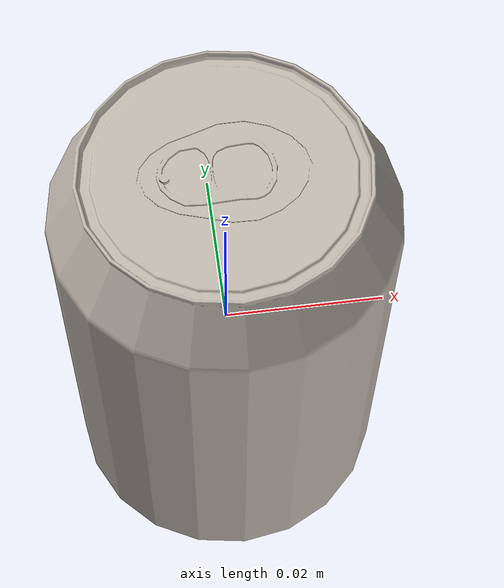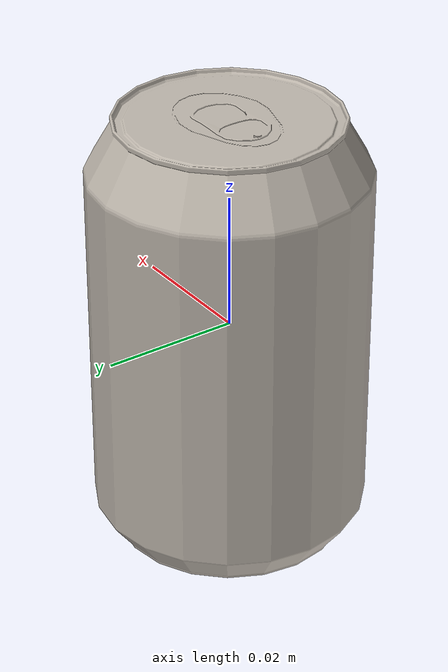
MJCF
<mujoco model="tomato_0">
  <asset>
    <mesh file="visual/model_normalized_0.obj" name="tomato_0_model_normalized_0_vis" scale="0.06500000000000003 0.06500000000000003 0.06500000000000003" refquat="1.0 0.0 0.0 0.0" />
    <mesh file="collision/model_normalized_collision_22.obj" name="tomato_0_model_normalized_collision_22._coll" scale="0.06500000000000003 0.06500000000000003 0.06500000000000003" refquat="1.0 0.0 0.0 0.0" />
    <mesh file="collision/model_normalized_collision_23.obj" name="tomato_0_model_normalized_collision_23._coll" scale="0.06500000000000003 0.06500000000000003 0.06500000000000003" refquat="1.0 0.0 0.0 0.0" />
    <mesh file="collision/model_normalized_collision_21.obj" name="tomato_0_model_normalized_collision_21._coll" scale="0.06500000000000003 0.06500000000000003 0.06500000000000003" refquat="1.0 0.0 0.0 0.0" />
    <mesh file="collision/model_normalized_collision_20.obj" name="tomato_0_model_normalized_collision_20._coll" scale="0.06500000000000003 0.06500000000000003 0.06500000000000003" refquat="1.0 0.0 0.0 0.0" />
    <mesh file="collision/model_normalized_collision_24.obj" name="tomato_0_model_normalized_collision_24._coll" scale="0.06500000000000003 0.06500000000000003 0.06500000000000003" refquat="1.0 0.0 0.0 0.0" />
    <mesh file="collision/model_normalized_collision_30.obj" name="tomato_0_model_normalized_collision_30._coll" scale="0.06500000000000003 0.06500000000000003 0.06500000000000003" refquat="1.0 0.0 0.0 0.0" />
    <mesh file="collision/model_normalized_collision_18.obj" name="tomato_0_model_normalized_collision_18._coll" scale="0.06500000000000003 0.06500000000000003 0.06500000000000003" refquat="1.0 0.0 0.0 0.0" />
    <mesh file="collision/model_normalized_collision_19.obj" name="tomato_0_model_normalized_collision_19._coll" scale="0.06500000000000003 0.06500000000000003 0.06500000000000003" refquat="1.0 0.0 0.0 0.0" />
    <mesh file="collision/model_normalized_collision_31.obj" name="tomato_0_model_normalized_collision_31._coll" scale="0.06500000000000003 0.06500000000000003 0.06500000000000003" refquat="1.0 0.0 0.0 0.0" />
    <mesh file="collision/model_normalized_collision_25.obj" name="tomato_0_model_normalized_collision_25._coll" scale="0.06500000000000003 0.06500000000000003 0.06500000000000003" refquat="1.0 0.0 0.0 0.0" />
    <mesh file="collision/model_normalized_collision_27.obj" name="tomato_0_model_normalized_collision_27._coll" scale="0.06500000000000003 0.06500000000000003 0.06500000000000003" refquat="1.0 0.0 0.0 0.0" />
    <mesh file="collision/model_normalized_collision_26.obj" name="tomato_0_model_normalized_collision_26._coll" scale="0.06500000000000003 0.06500000000000003 0.06500000000000003" refquat="1.0 0.0 0.0 0.0" />
    <mesh file="collision/model_normalized_collision_9.obj" name="tomato_0_model_normalized_collision_9._coll" scale="0.06500000000000003 0.06500000000000003 0.06500000000000003" refquat="1.0 0.0 0.0 0.0" />
    <mesh file="collision/model_normalized_collision_8.obj" name="tomato_0_model_normalized_collision_8._coll" scale="0.06500000000000003 0.06500000000000003 0.06500000000000003" refquat="1.0 0.0 0.0 0.0" />
    <mesh file="collision/model_normalized_collision_6.obj" name="tomato_0_model_normalized_collision_6._coll" scale="0.06500000000000003 0.06500000000000003 0.06500000000000003" refquat="1.0 0.0 0.0 0.0" />
    <mesh file="collision/model_normalized_collision_7.obj" name="tomato_0_model_normalized_collision_7._coll" scale="0.06500000000000003 0.06500000000000003 0.06500000000000003" refquat="1.0 0.0 0.0 0.0" />
    <mesh file="collision/model_normalized_collision_5.obj" name="tomato_0_model_normalized_collision_5._coll" scale="0.06500000000000003 0.06500000000000003 0.06500000000000003" refquat="1.0 0.0 0.0 0.0" />
    <mesh file="collision/model_normalized_collision_4.obj" name="tomato_0_model_normalized_collision_4._coll" scale="0.06500000000000003 0.06500000000000003 0.06500000000000003" refquat="1.0 0.0 0.0 0.0" />
    <mesh file="collision/model_normalized_collision_0.obj" name="tomato_0_model_normalized_collision_0._coll" scale="0.06500000000000003 0.06500000000000003 0.06500000000000003" refquat="1.0 0.0 0.0 0.0" />
    <mesh file="collision/model_normalized_collision_1.obj" name="tomato_0_model_normalized_collision_1._coll" scale="0.06500000000000003 0.06500000000000003 0.06500000000000003" refquat="1.0 0.0 0.0 0.0" />
    <mesh file="collision/model_normalized_collision_3.obj" name="tomato_0_model_normalized_collision_3._coll" scale="0.06500000000000003 0.06500000000000003 0.06500000000000003" refquat="1.0 0.0 0.0 0.0" />
    <mesh file="collision/model_normalized_collision_2.obj" name="tomato_0_model_normalized_collision_2._coll" scale="0.06500000000000003 0.06500000000000003 0.06500000000000003" refquat="1.0 0.0 0.0 0.0" />
    <mesh file="collision/model_normalized_collision_17.obj" name="tomato_0_model_normalized_collision_17._coll" scale="0.06500000000000003 0.06500000000000003 0.06500000000000003" refquat="1.0 0.0 0.0 0.0" />
    <mesh file="collision/model_normalized_collision_16.obj" name="tomato_0_model_normalized_collision_16._coll" scale="0.06500000000000003 0.06500000000000003 0.06500000000000003" refquat="1.0 0.0 0.0 0.0" />
    <mesh file="collision/model_normalized_collision_28.obj" name="tomato_0_model_normalized_collision_28._coll" scale="0.06500000000000003 0.06500000000000003 0.06500000000000003" refquat="1.0 0.0 0.0 0.0" />
    <mesh file="collision/model_normalized_collision_14.obj" name="tomato_0_model_normalized_collision_14._coll" scale="0.06500000000000003 0.06500000000000003 0.06500000000000003" refquat="1.0 0.0 0.0 0.0" />
    <mesh file="collision/model_normalized_collision_15.obj" name="tomato_0_model_normalized_collision_15._coll" scale="0.06500000000000003 0.06500000000000003 0.06500000000000003" refquat="1.0 0.0 0.0 0.0" />
    <mesh file="collision/model_normalized_collision_29.obj" name="tomato_0_model_normalized_collision_29._coll" scale="0.06500000000000003 0.06500000000000003 0.06500000000000003" refquat="1.0 0.0 0.0 0.0" />
    <mesh file="collision/model_normalized_collision_11.obj" name="tomato_0_model_normalized_collision_11._coll" scale="0.06500000000000003 0.06500000000000003 0.06500000000000003" refquat="1.0 0.0 0.0 0.0" />
    <mesh file="collision/model_normalized_collision_10.obj" name="tomato_0_model_normalized_collision_10._coll" scale="0.06500000000000003 0.06500000000000003 0.06500000000000003" refquat="1.0 0.0 0.0 0.0" />
    <mesh file="collision/model_normalized_collision_12.obj" name="tomato_0_model_normalized_collision_12._coll" scale="0.06500000000000003 0.06500000000000003 0.06500000000000003" refquat="1.0 0.0 0.0 0.0" />
    <mesh file="collision/model_normalized_collision_13.obj" name="tomato_0_model_normalized_collision_13._coll" scale="0.06500000000000003 0.06500000000000003 0.06500000000000003" refquat="1.0 0.0 0.0 0.0" />
    <texture type="2d" name="tomato_0_image0" file="visual/image0.png" />
    <material name="tomato_0_material0.023" texture="tomato_0_image0" specular="0.5" shininess="0.25" />
  </asset>
  <worldbody>
    <body>
      <joint name="tomato_0_object_joint" type="free" damping="1." /><body name="tomato_0_object">
        <geom solimp="0.998 0.998 0.001" solref="0.001 1" density="300" friction="0.95 0.3 0.1" type="mesh" mesh="tomato_0_model_normalized_0_vis" conaffinity="0" contype="0" group="1" material="tomato_0_material0.023" />
        <geom solimp="0.998 0.998 0.001" solref="0.001 1" density="300" friction="0.95 0.3 0.1" type="mesh" mesh="tomato_0_model_normalized_collision_22._coll" group="0" rgba="0.8 0.8 0.8 0.0" />
        <geom solimp="0.998 0.998 0.001" solref="0.001 1" density="300" friction="0.95 0.3 0.1" type="mesh" mesh="tomato_0_model_normalized_collision_23._coll" group="0" rgba="0.8 0.8 0.8 0.0" />
        <geom solimp="0.998 0.998 0.001" solref="0.001 1" density="300" friction="0.95 0.3 0.1" type="mesh" mesh="tomato_0_model_normalized_collision_21._coll" group="0" rgba="0.8 0.8 0.8 0.0" />
        <geom solimp="0.998 0.998 0.001" solref="0.001 1" density="300" friction="0.95 0.3 0.1" type="mesh" mesh="tomato_0_model_normalized_collision_20._coll" group="0" rgba="0.8 0.8 0.8 0.0" />
        <geom solimp="0.998 0.998 0.001" solref="0.001 1" density="300" friction="0.95 0.3 0.1" type="mesh" mesh="tomato_0_model_normalized_collision_24._coll" group="0" rgba="0.8 0.8 0.8 0.0" />
        <geom solimp="0.998 0.998 0.001" solref="0.001 1" density="300" friction="0.95 0.3 0.1" type="mesh" mesh="tomato_0_model_normalized_collision_30._coll" group="0" rgba="0.8 0.8 0.8 0.0" />
        <geom solimp="0.998 0.998 0.001" solref="0.001 1" density="300" friction="0.95 0.3 0.1" type="mesh" mesh="tomato_0_model_normalized_collision_18._coll" group="0" rgba="0.8 0.8 0.8 0.0" />
        <geom solimp="0.998 0.998 0.001" solref="0.001 1" density="300" friction="0.95 0.3 0.1" type="mesh" mesh="tomato_0_model_normalized_collision_19._coll" group="0" rgba="0.8 0.8 0.8 0.0" />
        <geom solimp="0.998 0.998 0.001" solref="0.001 1" density="300" friction="0.95 0.3 0.1" type="mesh" mesh="tomato_0_model_normalized_collision_31._coll" group="0" rgba="0.8 0.8 0.8 0.0" />
        <geom solimp="0.998 0.998 0.001" solref="0.001 1" density="300" friction="0.95 0.3 0.1" type="mesh" mesh="tomato_0_model_normalized_collision_25._coll" group="0" rgba="0.8 0.8 0.8 0.0" />
        <geom solimp="0.998 0.998 0.001" solref="0.001 1" density="300" friction="0.95 0.3 0.1" type="mesh" mesh="tomato_0_model_normalized_collision_27._coll" group="0" rgba="0.8 0.8 0.8 0.0" />
        <geom solimp="0.998 0.998 0.001" solref="0.001 1" density="300" friction="0.95 0.3 0.1" type="mesh" mesh="tomato_0_model_normalized_collision_26._coll" group="0" rgba="0.8 0.8 0.8 0.0" />
        <geom solimp="0.998 0.998 0.001" solref="0.001 1" density="300" friction="0.95 0.3 0.1" type="mesh" mesh="tomato_0_model_normalized_collision_9._coll" group="0" rgba="0.8 0.8 0.8 0.0" />
        <geom solimp="0.998 0.998 0.001" solref="0.001 1" density="300" friction="0.95 0.3 0.1" type="mesh" mesh="tomato_0_model_normalized_collision_8._coll" group="0" rgba="0.8 0.8 0.8 0.0" />
        <geom solimp="0.998 0.998 0.001" solref="0.001 1" density="300" friction="0.95 0.3 0.1" type="mesh" mesh="tomato_0_model_normalized_collision_6._coll" group="0" rgba="0.8 0.8 0.8 0.0" />
        <geom solimp="0.998 0.998 0.001" solref="0.001 1" density="300" friction="0.95 0.3 0.1" type="mesh" mesh="tomato_0_model_normalized_collision_7._coll" group="0" rgba="0.8 0.8 0.8 0.0" />
        <geom solimp="0.998 0.998 0.001" solref="0.001 1" density="300" friction="0.95 0.3 0.1" type="mesh" mesh="tomato_0_model_normalized_collision_5._coll" group="0" rgba="0.8 0.8 0.8 0.0" />
        <geom solimp="0.998 0.998 0.001" solref="0.001 1" density="300" friction="0.95 0.3 0.1" type="mesh" mesh="tomato_0_model_normalized_collision_4._coll" group="0" rgba="0.8 0.8 0.8 0.0" />
        <geom solimp="0.998 0.998 0.001" solref="0.001 1" density="300" friction="0.95 0.3 0.1" type="mesh" mesh="tomato_0_model_normalized_collision_0._coll" group="0" rgba="0.8 0.8 0.8 0.0" />
        <geom solimp="0.998 0.998 0.001" solref="0.001 1" density="300" friction="0.95 0.3 0.1" type="mesh" mesh="tomato_0_model_normalized_collision_1._coll" group="0" rgba="0.8 0.8 0.8 0.0" />
        <geom solimp="0.998 0.998 0.001" solref="0.001 1" density="300" friction="0.95 0.3 0.1" type="mesh" mesh="tomato_0_model_normalized_collision_3._coll" group="0" rgba="0.8 0.8 0.8 0.0" />
        <geom solimp="0.998 0.998 0.001" solref="0.001 1" density="300" friction="0.95 0.3 0.1" type="mesh" mesh="tomato_0_model_normalized_collision_2._coll" group="0" rgba="0.8 0.8 0.8 0.0" />
        <geom solimp="0.998 0.998 0.001" solref="0.001 1" density="300" friction="0.95 0.3 0.1" type="mesh" mesh="tomato_0_model_normalized_collision_17._coll" group="0" rgba="0.8 0.8 0.8 0.0" />
        <geom solimp="0.998 0.998 0.001" solref="0.001 1" density="300" friction="0.95 0.3 0.1" type="mesh" mesh="tomato_0_model_normalized_collision_16._coll" group="0" rgba="0.8 0.8 0.8 0.0" />
        <geom solimp="0.998 0.998 0.001" solref="0.001 1" density="300" friction="0.95 0.3 0.1" type="mesh" mesh="tomato_0_model_normalized_collision_28._coll" group="0" rgba="0.8 0.8 0.8 0.0" />
        <geom solimp="0.998 0.998 0.001" solref="0.001 1" density="300" friction="0.95 0.3 0.1" type="mesh" mesh="tomato_0_model_normalized_collision_14._coll" group="0" rgba="0.8 0.8 0.8 0.0" />
        <geom solimp="0.998 0.998 0.001" solref="0.001 1" density="300" friction="0.95 0.3 0.1" type="mesh" mesh="tomato_0_model_normalized_collision_15._coll" group="0" rgba="0.8 0.8 0.8 0.0" />
        <geom solimp="0.998 0.998 0.001" solref="0.001 1" density="300" friction="0.95 0.3 0.1" type="mesh" mesh="tomato_0_model_normalized_collision_29._coll" group="0" rgba="0.8 0.8 0.8 0.0" />
        <geom solimp="0.998 0.998 0.001" solref="0.001 1" density="300" friction="0.95 0.3 0.1" type="mesh" mesh="tomato_0_model_normalized_collision_11._coll" group="0" rgba="0.8 0.8 0.8 0.0" />
        <geom solimp="0.998 0.998 0.001" solref="0.001 1" density="300" friction="0.95 0.3 0.1" type="mesh" mesh="tomato_0_model_normalized_collision_10._coll" group="0" rgba="0.8 0.8 0.8 0.0" />
        <geom solimp="0.998 0.998 0.001" solref="0.001 1" density="300" friction="0.95 0.3 0.1" type="mesh" mesh="tomato_0_model_normalized_collision_12._coll" group="0" rgba="0.8 0.8 0.8 0.0" />
        <geom solimp="0.998 0.998 0.001" solref="0.001 1" density="300" friction="0.95 0.3 0.1" type="mesh" mesh="tomato_0_model_normalized_collision_13._coll" group="0" rgba="0.8 0.8 0.8 0.0" />
      </body>

    </body>
  </worldbody>
</mujoco>
